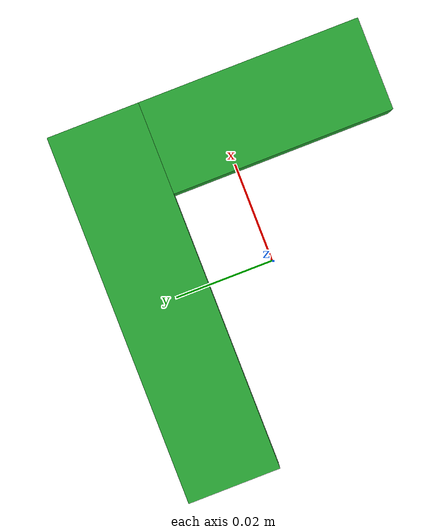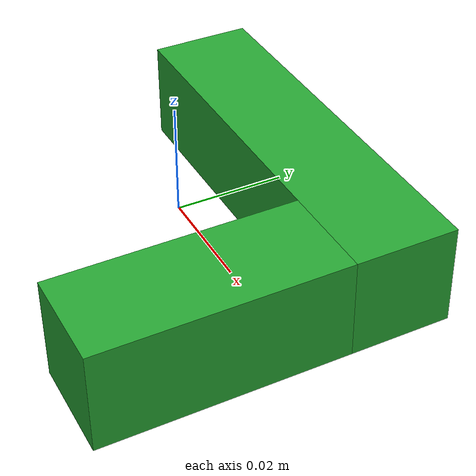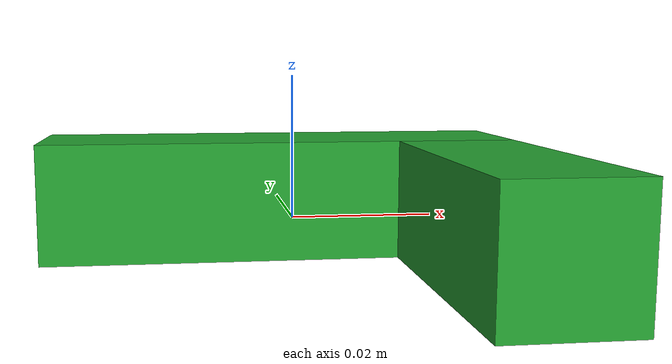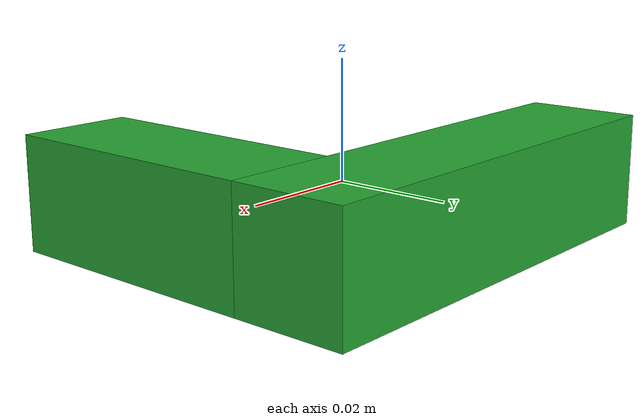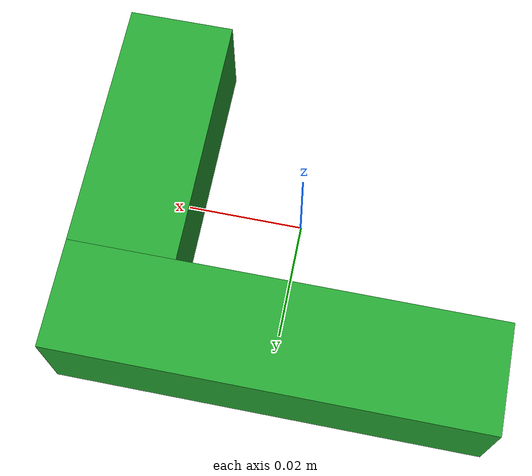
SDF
<?xml version='1.0'?>
<sdf version='1.6'>
  <model name='L_shape_small'>
    <link name='link'>
      <inertial>
        <mass>0.0633</mass>
        <inertia>
          <ixx>0.000047</ixx> <ixy>0</ixy> <ixz>0</ixz>
          <iyy>0.000047</iyy> <iyz>0</iyz>
          <izz>0.000095</izz>
        </inertia>
      </inertial>

      <visual name='long_vis'>
        <pose>0.000000 0.022500 0.000000 0 0 0</pose>
        <geometry><box><size>0.075000 0.018750 0.018750</size></box></geometry>
        <material><script><name>Gazebo/Green</name></script></material>
      </visual>
      <collision name='long_col'>
        <pose>0.000000 0.022500 0.000000 0 0 0</pose>
        <geometry><box><size>0.075000 0.018750 0.018750</size></box></geometry>
        <surface><friction><ode><mu>100.0</mu><mu2>100.0</mu2></ode></friction></surface>
      </collision>

      <visual name='short_vis'>
        <pose>0.028125 -0.009375 0.000000 0 0 0</pose> <geometry><box><size>0.018750 0.045000 0.018750</size></box></geometry>
        <material><script><name>Gazebo/Green</name></script></material>
      </visual>
      <collision name='short_col'>
        <pose>0.028125 -0.009375 0.000000 0 0 0</pose>
        <geometry><box><size>0.018750 0.045000 0.018750</size></box></geometry>
        <surface><friction><ode><mu>100.0</mu><mu2>100.0</mu2></ode></friction></surface>
      </collision>
    </link>
  </model>
</sdf>
